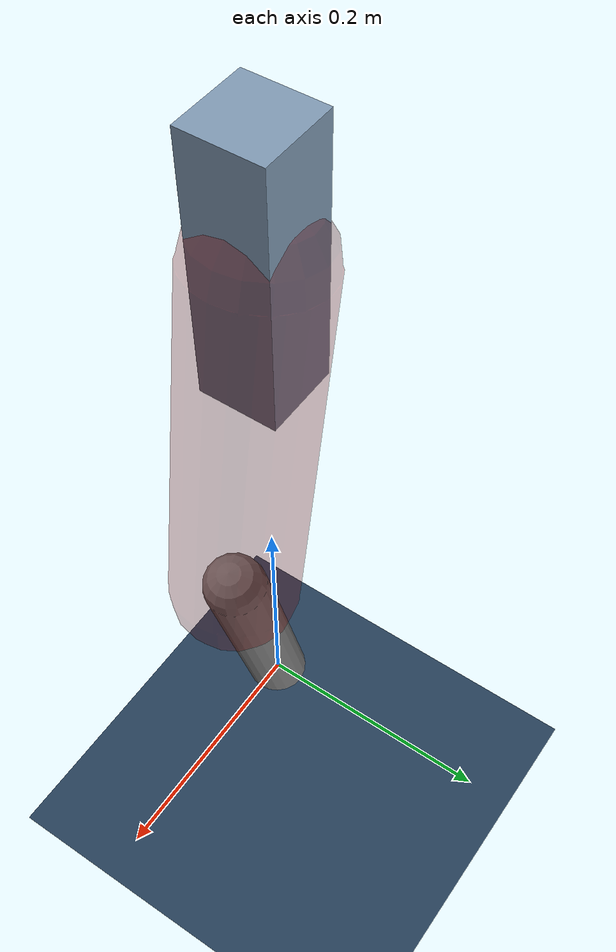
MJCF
<mujoco model="Hopper2D">
	<compiler inertiafromgeom="true" angle="radian" />
	<option timestep="0.001" integrator="implicit" cone="elliptic" solver="Newton" tolerance="1e-10" />

	<default>
		<geom contype="1" conaffinity="1" condim="3" friction="2 0.005 0.0001" solref="0.005 1" />
		<joint limited="true" damping="0.1" />
	</default>

	<asset>
		<texture name="skybox" type="skybox" builtin="gradient" rgb1=".4 .6 .8" rgb2="0 0 0" width="800" height="800" />
		<texture name="grid" type="2d" builtin="checker" rgb1=".1 .2 .3" rgb2=".2 .3 .4" width="300" height="300" mark="edge" markrgb=".2 .3 .4" />
		<material name="ground" texture="grid" texrepeat="1 1" texuniform="true" reflectance="0.1" />
		<material name="leg" rgba="0.5 0.6 0.7 1" />
	</asset>

	<worldbody>

		<geom name="floor" type="plane" size="5 5 0.25" material="ground" />

		<light directional="false" diffuse="0.8 0.8 0.8" specular="0.3 0.3 0.3" pos="0 0 2" dir="0 0 -1" />
		<light mode="targetbodycom" target="base" directional="false" diffuse="0.8 0.8 0.8" specular="0.3 0.3 0.3" pos="0 0 2" dir="0 0 -1" />

		<camera name="fixed" pos="0 -2 1" xyaxes="1 0 0 0 0 1" />
		<camera name="tracking" mode="trackcom" pos="0 -3 1" />

		<body name="root" pos="0 0 0.47504856215608493">
			<joint name="slide_x" type="slide" axis="1 0 0" range="-100 100" />
			<joint name="slide_z" type="slide" axis="0 0 1" range="0 10" />

			<body name="base" pos="0 0 0">
				<geom name="torso" type="box" size="0.03 0.03 0.1" mass="1.957" material="leg" />

				<body name="link1" pos="0 0 0" euler="0 1.4017117728311395 0">
					<joint type="hinge" axis="0 -1 0" pos="0 0 0" name="hinge1" limited="true" range="-3.14 3.14" stiffness="0" damping="0.1" />
					<geom name="thigh" type="capsule" fromto="0 0 0 0.28617658396700585 0 0" size="0.05" rgba="0.5 0 0 0.3" mass="0.9515767767109158" />

					<body name="link2" pos="0.28617658396700585 0 0" euler="0 0.4136706890136852 0">
						<joint type="hinge" axis="0 -1 0" pos="0 0 0" name="hinge2" limited="true" range="-3.14 3.14" stiffness="0" damping="0.1" />
						<geom name="shank" type="capsule" fromto="0 0 0 0.1988719781890791 0 0" size="0.025" mass="0.39998478037017116" />

					</body>
				</body>
			</body>
		</body>
	</worldbody>

	<actuator>
		<motor name="torque1" joint="hinge1" ctrlrange="-30.818004222671426 30.818004222671426" ctrllimited="true" gear="1" />
		<motor name="torque2" joint="hinge2" ctrlrange="-52.65480575128746 52.65480575128746" ctrllimited="true" gear="1" />
	</actuator>
</mujoco>
